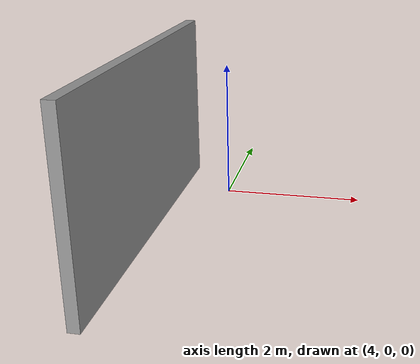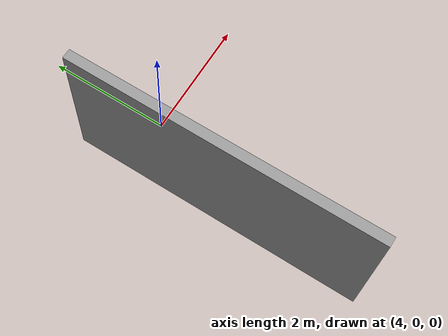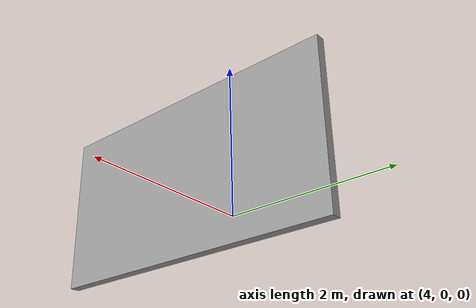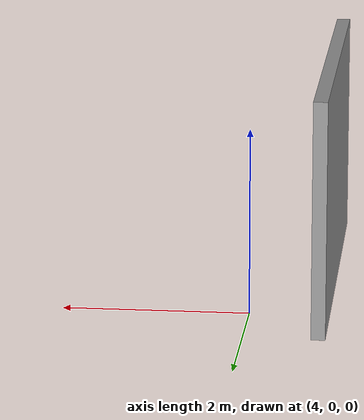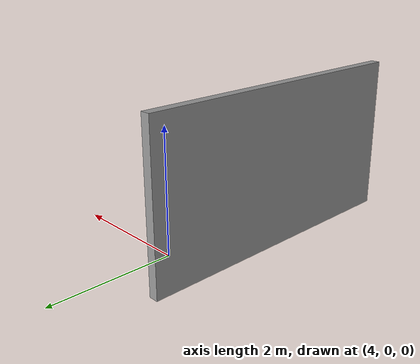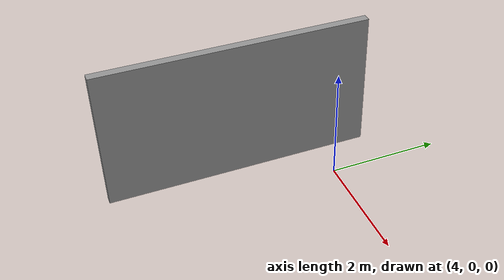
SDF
<?xml version='1.0'?>
<sdf version='1.6'>
  <model name='wall'>
    <pose frame=''>3.22 -1.49 0 0 -0 0</pose>
    <link name='Wall_4'>
      <collision name='Wall_4_Collision'>
        <geometry>
          <box>
            <size>4.75 0.15 2.5</size>
          </box>
        </geometry>
        <pose frame=''>0 0 1.25 0 -0 0</pose>
      </collision>
      <visual name='Wall_4_Visual'>
        <pose frame=''>0 0 1.25 0 -0 0</pose>
        <geometry>
          <box>
            <size>4.75 0.15 2.5</size>
          </box>
        </geometry>
        <material>
          <script>
            <uri>file://media/materials/scripts/gazebo.material</uri>
            <name>Gazebo/Grey</name>
          </script>
          <ambient>1 1 1 1</ambient>
        </material>
        <meta>
          <layer>0</layer>
        </meta>
      </visual>
      <pose frame=''>0 0 0 0 -0 1.5708</pose>
    </link>
    <static>1</static>
  </model>
</sdf>
